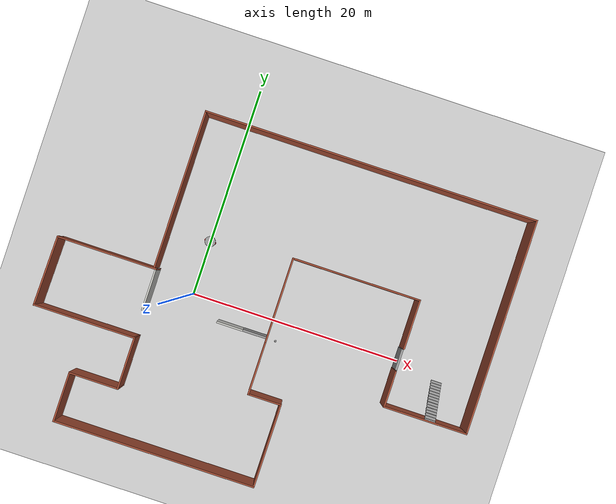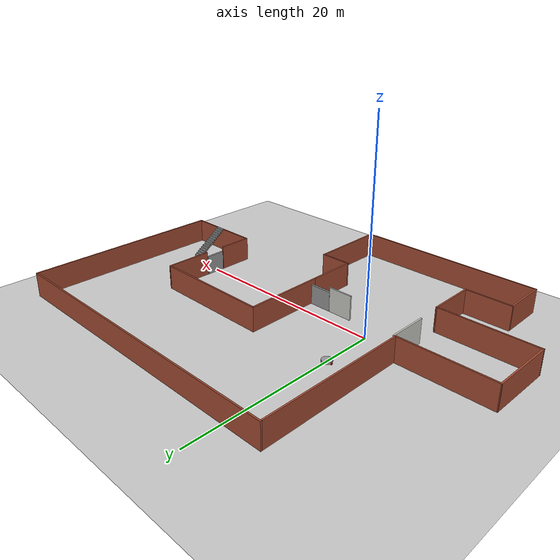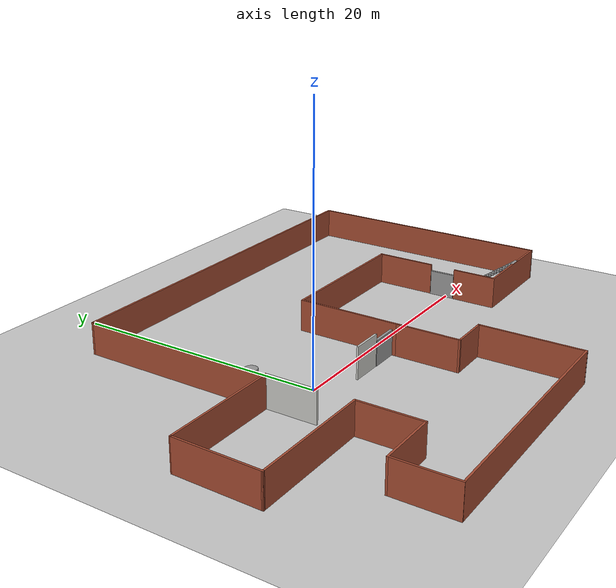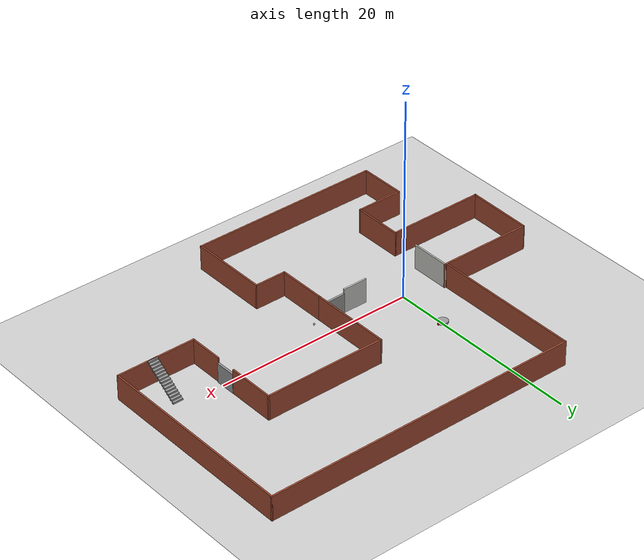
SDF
<sdf version="1.6">
 <world name="default">
  <light name="sun" type="directional">
   <pose>0 0 10 0 -0 0</pose>
   <diffuse>0.8 0.8 0.8 1</diffuse>
   <specular>0.2 0.2 0.2 1</specular>
   <attenuation>
    <range>1000</range>
    <constant>0.9</constant>
    <linear>0.01</linear>
    <quadratic>0.001</quadratic>
   </attenuation>
   <direction>-0.5 0.1 -0.9</direction>
   <spot><inner_angle>0</inner_angle><outer_angle>0</outer_angle><falloff>0</falloff></spot>
  </light>
  <model name="ground_plane">
   <static>1</static>
   <link name="link">
    <collision name="collision">
     <geometry><plane><normal>0 0 1</normal><size>100 100</size></plane></geometry>
     <surface>
      <contact><collide_bitmask>65535</collide_bitmask></contact>
      <friction><ode><mu>100</mu><mu2>50</mu2></ode></friction>
     </surface>
    </collision>
    <visual name="visual">
     <cast_shadows>0</cast_shadows>
     <geometry><plane><normal>0 0 1</normal><size>100 100</size></plane></geometry>
     <material>
      <script><uri>file://media/materials/scripts/gazebo.material</uri><name>Gazebo/Grey</name></script>
     </material>
    </visual>
   </link>
  </model>
  <gravity>0 0 -9.8</gravity>
  <magnetic_field>6e-06 2.3e-05 -4.2e-05</magnetic_field>
  <atmosphere type="adiabatic"/>
  <physics type="ode">
   <max_step_size>0.001</max_step_size>
   <real_time_factor>1</real_time_factor>
   <real_time_update_rate>1000</real_time_update_rate>
  </physics>
  <scene><ambient>0.4 0.4 0.4 1</ambient><background>0.7 0.7 0.7 1</background><shadows>1</shadows></scene>
  <spherical_coordinates>
   <surface_model>EARTH_WGS84</surface_model>
   <latitude_deg>0</latitude_deg>
   <longitude_deg>0</longitude_deg>
   <elevation>0</elevation>
   <heading_deg>0</heading_deg>
  </spherical_coordinates>
  <model name="myworld">
   <pose>7.2478 0.722652 0 0 -0 0</pose>
   <link name="Door_0">
    <collision name="Door_0_Collision">
     <geometry><box><size>1.99414 0.2 2</size></box></geometry>
     <pose>0 0 1 0 -0 0</pose>
    </collision>
    <visual name="Door_0_Visual">
     <pose>0 0 1 0 -0 0</pose>
     <geometry><box><size>1.99414 0.2 2</size></box></geometry>
     <material>
      <script><uri>file://media/materials/scripts/gazebo.material</uri><name>Gazebo/Grey</name></script>
     </material>
    </visual>
    <pose>12.6422 -0.408192 0 0 -0 -1.5619</pose>
   </link>
   <link name="Door_1">
    <collision name="Door_1_Collision">
     <geometry><box><size>2.24486 0.2 2</size></box></geometry>
     <pose>0 0 1 0 -0 0</pose>
    </collision>
    <visual name="Door_1_Visual">
     <pose>0 0 1 0 -0 0</pose>
     <geometry><box><size>2.24486 0.2 2</size></box></geometry>
     <material>
      <script><uri>file://media/materials/scripts/gazebo.material</uri><name>Gazebo/Grey</name></script>
     </material>
    </visual>
    <pose>-0.646656 -2.34103 0 0 -0 0</pose>
   </link>
   <link name="Stairs_0">
    <visual name="Stairs_0_Visual_0">
     <pose>16.9302 -1.50411 0.083333 0 -0 0</pose>
     <geometry><box><size>1 0.233333 0.166667</size></box></geometry>
     <material>
      <script><uri>file://media/materials/scripts/gazebo.material</uri><name>Gazebo/Grey</name></script>
      <ambient>1 1 1 1</ambient>
     </material>
     <meta><layer>0</layer></meta>
    </visual>
    <collision name="Stairs_0_Collision_0">
     <geometry><box><size>1 0.233333 0.166667</size></box></geometry>
     <pose>16.9302 -1.50411 0.083333 0 -0 0</pose>
    </collision>
    <visual name="Stairs_0_Visual_1">
     <pose>16.9302 -1.73745 0.25 0 -0 0</pose>
     <geometry><box><size>1 0.233333 0.166667</size></box></geometry>
     <material>
      <script><uri>file://media/materials/scripts/gazebo.material</uri><name>Gazebo/Grey</name></script>
      <ambient>1 1 1 1</ambient>
     </material>
     <meta><layer>0</layer></meta>
    </visual>
    <collision name="Stairs_0_Collision_1">
     <geometry><box><size>1 0.233333 0.166667</size></box></geometry>
     <pose>16.9302 -1.73745 0.25 0 -0 0</pose>
    </collision>
    <visual name="Stairs_0_Visual_2">
     <pose>16.9302 -1.97078 0.416667 0 -0 0</pose>
     <geometry><box><size>1 0.233333 0.166667</size></box></geometry>
     <material>
      <script><uri>file://media/materials/scripts/gazebo.material</uri><name>Gazebo/Grey</name></script>
      <ambient>1 1 1 1</ambient>
     </material>
     <meta><layer>0</layer></meta>
    </visual>
    <collision name="Stairs_0_Collision_2">
     <geometry><box><size>1 0.233333 0.166667</size></box></geometry>
     <pose>16.9302 -1.97078 0.416667 0 -0 0</pose>
    </collision>
    <visual name="Stairs_0_Visual_3">
     <pose>16.9302 -2.20411 0.583333 0 -0 0</pose>
     <geometry><box><size>1 0.233333 0.166667</size></box></geometry>
     <material>
      <script><uri>file://media/materials/scripts/gazebo.material</uri><name>Gazebo/Grey</name></script>
      <ambient>1 1 1 1</ambient>
     </material>
     <meta><layer>0</layer></meta>
    </visual>
    <collision name="Stairs_0_Collision_3">
     <geometry><box><size>1 0.233333 0.166667</size></box></geometry>
     <pose>16.9302 -2.20411 0.583333 0 -0 0</pose>
    </collision>
    <visual name="Stairs_0_Visual_4">
     <pose>16.9302 -2.43745 0.75 0 -0 0</pose>
     <geometry><box><size>1 0.233333 0.166667</size></box></geometry>
     <material>
      <script><uri>file://media/materials/scripts/gazebo.material</uri><name>Gazebo/Grey</name></script>
      <ambient>1 1 1 1</ambient>
     </material>
     <meta><layer>0</layer></meta>
    </visual>
    <collision name="Stairs_0_Collision_4">
     <geometry><box><size>1 0.233333 0.166667</size></box></geometry>
     <pose>16.9302 -2.43745 0.75 0 -0 0</pose>
    </collision>
    <visual name="Stairs_0_Visual_5">
     <pose>16.9302 -2.67078 0.916667 0 -0 0</pose>
     <geometry><box><size>1 0.233333 0.166667</size></box></geometry>
     <material>
      <script><uri>file://media/materials/scripts/gazebo.material</uri><name>Gazebo/Grey</name></script>
      <ambient>1 1 1 1</ambient>
     </material>
     <meta><layer>0</layer></meta>
    </visual>
    <collision name="Stairs_0_Collision_5">
     <geometry><box><size>1 0.233333 0.166667</size></box></geometry>
     <pose>16.9302 -2.67078 0.916667 0 -0 0</pose>
    </collision>
    <visual name="Stairs_0_Visual_6">
     <pose>16.9302 -2.90411 1.08333 0 -0 0</pose>
     <geometry><box><size>1 0.233333 0.166667</size></box></geometry>
     <material>
      <script><uri>file://media/materials/scripts/gazebo.material</uri><name>Gazebo/Grey</name></script>
      <ambient>1 1 1 1</ambient>
     </material>
     <meta><layer>0</layer></meta>
    </visual>
    <collision name="Stairs_0_Collision_6">
     <geometry><box><size>1 0.233333 0.166667</size></box></geometry>
     <pose>16.9302 -2.90411 1.08333 0 -0 0</pose>
    </collision>
    <visual name="Stairs_0_Visual_7">
     <pose>16.9302 -3.13745 1.25 0 -0 0</pose>
     <geometry><box><size>1 0.233333 0.166667</size></box></geometry>
     <material>
      <script><uri>file://media/materials/scripts/gazebo.material</uri><name>Gazebo/Grey</name></script>
      <ambient>1 1 1 1</ambient>
     </material>
     <meta><layer>0</layer></meta>
    </visual>
    <collision name="Stairs_0_Collision_7">
     <geometry><box><size>1 0.233333 0.166667</size></box></geometry>
     <pose>16.9302 -3.13745 1.25 0 -0 0</pose>
    </collision>
    <visual name="Stairs_0_Visual_8">
     <pose>16.9302 -3.37078 1.41667 0 -0 0</pose>
     <geometry><box><size>1 0.233333 0.166667</size></box></geometry>
     <material>
      <script><uri>file://media/materials/scripts/gazebo.material</uri><name>Gazebo/Grey</name></script>
      <ambient>1 1 1 1</ambient>
     </material>
     <meta><layer>0</layer></meta>
    </visual>
    <collision name="Stairs_0_Collision_8">
     <geometry><box><size>1 0.233333 0.166667</size></box></geometry>
     <pose>16.9302 -3.37078 1.41667 0 -0 0</pose>
    </collision>
    <visual name="Stairs_0_Visual_9">
     <pose>16.9302 -3.60411 1.58333 0 -0 0</pose>
     <geometry><box><size>1 0.233333 0.166667</size></box></geometry>
     <material>
      <script><uri>file://media/materials/scripts/gazebo.material</uri><name>Gazebo/Grey</name></script>
      <ambient>1 1 1 1</ambient>
     </material>
     <meta><layer>0</layer></meta>
    </visual>
    <collision name="Stairs_0_Collision_9">
     <geometry><box><size>1 0.233333 0.166667</size></box></geometry>
     <pose>16.9302 -3.60411 1.58333 0 -0 0</pose>
    </collision>
    <visual name="Stairs_0_Visual_10">
     <pose>16.9302 -3.83745 1.75 0 -0 0</pose>
     <geometry><box><size>1 0.233333 0.166667</size></box></geometry>
     <material>
      <script><uri>file://media/materials/scripts/gazebo.material</uri><name>Gazebo/Grey</name></script>
      <ambient>1 1 1 1</ambient>
     </material>
     <meta><layer>0</layer></meta>
    </visual>
    <collision name="Stairs_0_Collision_10">
     <geometry><box><size>1 0.233333 0.166667</size></box></geometry>
     <pose>16.9302 -3.83745 1.75 0 -0 0</pose>
    </collision>
    <visual name="Stairs_0_Visual_11">
     <pose>16.9302 -4.07078 1.91667 0 -0 0</pose>
     <geometry><box><size>1 0.233333 0.166667</size></box></geometry>
     <material>
      <script><uri>file://media/materials/scripts/gazebo.material</uri><name>Gazebo/Grey</name></script>
      <ambient>1 1 1 1</ambient>
     </material>
     <meta><layer>0</layer></meta>
    </visual>
    <collision name="Stairs_0_Collision_11">
     <geometry><box><size>1 0.233333 0.166667</size></box></geometry>
     <pose>16.9302 -4.07078 1.91667 0 -0 0</pose>
    </collision>
    <visual name="Stairs_0_Visual_12">
     <pose>16.9302 -4.30411 2.08333 0 -0 0</pose>
     <geometry><box><size>1 0.233333 0.166667</size></box></geometry>
     <material>
      <script><uri>file://media/materials/scripts/gazebo.material</uri><name>Gazebo/Grey</name></script>
      <ambient>1 1 1 1</ambient>
     </material>
     <meta><layer>0</layer></meta>
    </visual>
    <collision name="Stairs_0_Collision_12">
     <geometry><box><size>1 0.233333 0.166667</size></box></geometry>
     <pose>16.9302 -4.30411 2.08333 0 -0 0</pose>
    </collision>
    <visual name="Stairs_0_Visual_13">
     <pose>16.9302 -4.53745 2.25 0 -0 0</pose>
     <geometry><box><size>1 0.233333 0.166667</size></box></geometry>
     <material>
      <script><uri>file://media/materials/scripts/gazebo.material</uri><name>Gazebo/Grey</name></script>
      <ambient>1 1 1 1</ambient>
     </material>
     <meta><layer>0</layer></meta>
    </visual>
    <collision name="Stairs_0_Collision_13">
     <geometry><box><size>1 0.233333 0.166667</size></box></geometry>
     <pose>16.9302 -4.53745 2.25 0 -0 0</pose>
    </collision>
    <visual name="Stairs_0_Visual_14">
     <pose>16.9302 -4.77078 2.41667 0 -0 0</pose>
     <geometry><box><size>1 0.233333 0.166667</size></box></geometry>
     <material>
      <script><uri>file://media/materials/scripts/gazebo.material</uri><name>Gazebo/Grey</name></script>
      <ambient>1 1 1 1</ambient>
     </material>
     <meta><layer>0</layer></meta>
    </visual>
    <collision name="Stairs_0_Collision_14">
     <geometry><box><size>1 0.233333 0.166667</size></box></geometry>
     <pose>16.9302 -4.77078 2.41667 0 -0 0</pose>
    </collision>
   </link>
   <link name="Wall_0">
    <collision name="Wall_0_Collision">
     <geometry><box><size>9.75 0.15 2.5</size></box></geometry>
     <pose>0 0 1.25 0 -0 0</pose>
    </collision>
    <visual name="Wall_0_Visual">
     <pose>0 0 1.25 0 -0 0</pose>
     <geometry><box><size>9.75 0.15 2.5</size></box></geometry>
     <material>
      <script><uri>file://media/materials/scripts/gazebo.material</uri><name>Gazebo/Bricks</name></script>
      <ambient>1 1 1 1</ambient>
     </material>
     <meta><layer>0</layer></meta>
    </visual>
    <pose>-15.6478 -6.04265 0 0 -0 0</pose>
   </link>
   <link name="Wall_1">
    <collision name="Wall_1_Collision">
     <geometry><box><size>5 0.15 2.5</size></box></geometry>
     <pose>0 0 1.25 0 -0 0</pose>
    </collision>
    <visual name="Wall_1_Visual">
     <pose>0 0 1.25 0 -0 0</pose>
     <geometry><box><size>5 0.15 2.5</size></box></geometry>
     <material>
      <script><uri>file://media/materials/scripts/gazebo.material</uri><name>Gazebo/Bricks</name></script>
      <ambient>1 1 1 1</ambient>
     </material>
     <meta><layer>0</layer></meta>
    </visual>
    <pose>-10.8478 -8.46765 0 0 -0 -1.5708</pose>
   </link>
   <link name="Wall_10">
    <collision name="Wall_10_Collision">
     <geometry><box><size>4.75 0.15 2.5</size></box></geometry>
     <pose>0 0 1.25 0 -0 0</pose>
    </collision>
    <visual name="Wall_10_Visual">
     <pose>0 0 1.25 0 -0 0</pose>
     <geometry><box><size>4.75 0.15 2.5</size></box></geometry>
     <material>
      <script><uri>file://media/materials/scripts/gazebo.material</uri><name>Gazebo/Bricks</name></script>
      <ambient>1 1 1 1</ambient>
     </material>
     <meta><layer>0</layer></meta>
    </visual>
    <pose>12.6522 3.00735 0 0 -0 -1.5708</pose>
   </link>
   <link name="Wall_12">
    <collision name="Wall_12_Collision">
     <geometry><box><size>2.5 0.15 2.5</size></box></geometry>
     <pose>0 0 1.25 0 -0 0</pose>
    </collision>
    <visual name="Wall_12_Visual">
     <pose>0 0 1.25 0 -0 0</pose>
     <geometry><box><size>2.5 0.15 2.5</size></box></geometry>
     <material>
      <script><uri>file://media/materials/scripts/gazebo.material</uri><name>Gazebo/CeilingTiled</name></script>
      <ambient>0.996078 0.47451 0.0196078 1</ambient>
     </material>
     <meta><layer>0</layer></meta>
    </visual>
    <pose>-2.9952 -2.3273 0 0 -0 0</pose>
   </link>
   <link name="Wall_14">
    <collision name="Wall_14_Collision">
     <geometry><box><size>4 0.15 2.5</size></box></geometry>
     <pose>0 0 1.25 0 -0 0</pose>
    </collision>
    <visual name="Wall_14_Visual">
     <pose>0 0 1.25 0 -0 0</pose>
     <geometry><box><size>4 0.15 2.5</size></box></geometry>
     <material>
      <script><uri>file://media/materials/scripts/gazebo.material</uri><name>Gazebo/CeilingTiled</name></script>
      <ambient>0.996078 0.47451 0.0196078 1</ambient>
     </material>
     <meta><layer>0</layer></meta>
    </visual>
    <pose>-10.9811 -1.43385 0 0 -0 1.5708</pose>
   </link>
   <link name="Wall_15">
    <collision name="Wall_15_Collision">
     <geometry><box><size>9.5 0.15 2.5</size></box></geometry>
     <pose>0 0 1.25 0 -0 0</pose>
    </collision>
    <visual name="Wall_15_Visual">
     <pose>0 0 1.25 0 -0 0</pose>
     <geometry><box><size>9.5 0.15 2.5</size></box></geometry>
     <material>
      <script><uri>file://media/materials/scripts/gazebo.material</uri><name>Gazebo/Bricks</name></script>
      <ambient>1 1 1 1</ambient>
     </material>
     <meta><layer>0</layer></meta>
    </visual>
    <pose>-15.6561 0.491153 0 0 -0 3.14159</pose>
   </link>
   <link name="Wall_16">
    <collision name="Wall_16_Collision">
     <geometry><box><size>6.68485 0.15 2.5</size></box></geometry>
     <pose>0 0 1.25 0 -0 0</pose>
    </collision>
    <visual name="Wall_16_Visual">
     <pose>0 0 1.25 0 -0 0</pose>
     <geometry><box><size>6.68485 0.15 2.5</size></box></geometry>
     <material>
      <script><uri>file://media/materials/scripts/gazebo.material</uri><name>Gazebo/Bricks</name></script>
      <ambient>1 1 1 1</ambient>
     </material>
     <meta><layer>0</layer></meta>
    </visual>
    <pose>-20.3894 -2.77575 0 0 -0 -1.58866</pose>
   </link>
   <link name="Wall_18">
    <collision name="Wall_18_Collision">
     <geometry><box><size>3.5 0.15 2.5</size></box></geometry>
     <pose>0 0 1.25 0 -0 0</pose>
    </collision>
    <visual name="Wall_18_Visual">
     <pose>0 0 1.25 0 -0 0</pose>
     <geometry><box><size>3.5 0.15 2.5</size></box></geometry>
     <material>
      <script><uri>file://media/materials/scripts/gazebo.material</uri><name>Gazebo/Bricks</name></script>
      <ambient>1 1 1 1</ambient>
     </material>
     <meta><layer>0</layer></meta>
    </visual>
    <pose>12.5991 -3.18235 0 0 -0 -1.5708</pose>
   </link>
   <link name="Wall_19">
    <collision name="Wall_19_Collision">
     <geometry><box><size>8 0.15 2.5</size></box></geometry>
     <pose>0 0 1.25 0 -0 0</pose>
    </collision>
    <visual name="Wall_19_Visual">
     <pose>0 0 1.25 0 -0 0</pose>
     <geometry><box><size>8 0.15 2.5</size></box></geometry>
     <material>
      <script><uri>file://media/materials/scripts/gazebo.material</uri><name>Gazebo/Bricks</name></script>
      <ambient>1 1 1 1</ambient>
     </material>
     <meta><layer>0</layer></meta>
    </visual>
    <pose>16.5241 -4.85735 0 0 -0 0</pose>
   </link>
   <link name="Wall_2">
    <collision name="Wall_2_Collision">
     <geometry><box><size>4.75 0.15 2.5</size></box></geometry>
     <pose>0 0 1.25 0 -0 0</pose>
    </collision>
    <visual name="Wall_2_Visual">
     <pose>0 0 1.25 0 -0 0</pose>
     <geometry><box><size>4.75 0.15 2.5</size></box></geometry>
     <material>
      <script><uri>file://media/materials/scripts/gazebo.material</uri><name>Gazebo/Bricks</name></script>
      <ambient>1 1 1 1</ambient>
     </material>
     <meta><layer>0</layer></meta>
    </visual>
    <pose>-13.1478 -10.8927 0 0 -0 3.14159</pose>
   </link>
   <link name="Wall_20">
    <collision name="Wall_20_Collision">
     <geometry><box><size>20.5 0.15 2.5</size></box></geometry>
     <pose>0 0 1.25 0 -0 0</pose>
    </collision>
    <visual name="Wall_20_Visual">
     <pose>0 0 1.25 0 -0 0</pose>
     <geometry><box><size>20.5 0.15 2.5</size></box></geometry>
     <material>
      <script><uri>file://media/materials/scripts/gazebo.material</uri><name>Gazebo/Bricks</name></script>
      <ambient>1 1 1 1</ambient>
     </material>
     <meta><layer>0</layer></meta>
    </visual>
    <pose>20.4491 5.31765 0 0 -0 1.5708</pose>
   </link>
   <link name="Wall_21">
    <collision name="Wall_21_Collision">
     <geometry><box><size>31.75 0.15 2.5</size></box></geometry>
     <pose>0 0 1.25 0 -0 0</pose>
    </collision>
    <visual name="Wall_21_Visual">
     <pose>0 0 1.25 0 -0 0</pose>
     <geometry><box><size>31.75 0.15 2.5</size></box></geometry>
     <material>
      <script><uri>file://media/materials/scripts/gazebo.material</uri><name>Gazebo/Bricks</name></script>
      <ambient>1 1 1 1</ambient>
     </material>
     <meta><layer>0</layer></meta>
    </visual>
    <pose>4.6491 15.4927 0 0 -0 3.14159</pose>
   </link>
   <link name="Wall_22">
    <collision name="Wall_22_Collision">
     <geometry><box><size>15 0.15 2.5</size></box></geometry>
     <pose>0 0 1.25 0 -0 0</pose>
    </collision>
    <visual name="Wall_22_Visual">
     <pose>0 0 1.25 0 -0 0</pose>
     <geometry><box><size>15 0.15 2.5</size></box></geometry>
     <material>
      <script><uri>file://media/materials/scripts/gazebo.material</uri><name>Gazebo/Bricks</name></script>
      <ambient>1 1 1 1</ambient>
     </material>
     <meta><layer>0</layer></meta>
    </visual>
    <pose>-11.1509 8.06765 0 0 -0 -1.5708</pose>
   </link>
   <link name="Wall_3">
    <collision name="Wall_3_Collision">
     <geometry><box><size>4.75 0.15 2.5</size></box></geometry>
     <pose>0 0 1.25 0 -0 0</pose>
    </collision>
    <visual name="Wall_3_Visual">
     <pose>0 0 1.25 0 -0 0</pose>
     <geometry><box><size>4.75 0.15 2.5</size></box></geometry>
     <material>
      <script><uri>file://media/materials/scripts/gazebo.material</uri><name>Gazebo/Bricks</name></script>
      <ambient>1 1 1 1</ambient>
     </material>
     <meta><layer>0</layer></meta>
    </visual>
    <pose>-15.4478 -13.1927 0 0 -0 -1.5708</pose>
   </link>
   <link name="Wall_4">
    <collision name="Wall_4_Collision">
     <geometry><box><size>19.25 0.15 2.5</size></box></geometry>
     <pose>0 0 1.25 0 -0 0</pose>
    </collision>
    <visual name="Wall_4_Visual">
     <pose>0 0 1.25 0 -0 0</pose>
     <geometry><box><size>19.25 0.15 2.5</size></box></geometry>
     <material>
      <script><uri>file://media/materials/scripts/gazebo.material</uri><name>Gazebo/Bricks</name></script>
      <ambient>1 1 1 1</ambient>
     </material>
     <meta><layer>0</layer></meta>
    </visual>
    <pose>-5.89778 -15.4927 0 0 -0 0</pose>
   </link>
   <link name="Wall_5">
    <collision name="Wall_5_Collision">
     <geometry><box><size>8 0.15 2.5</size></box></geometry>
     <pose>0 0 1.25 0 -0 0</pose>
    </collision>
    <visual name="Wall_5_Visual">
     <pose>0 0 1.25 0 -0 0</pose>
     <geometry><box><size>8 0.15 2.5</size></box></geometry>
     <material>
      <script><uri>file://media/materials/scripts/gazebo.material</uri><name>Gazebo/Bricks</name></script>
      <ambient>1 1 1 1</ambient>
     </material>
     <meta><layer>0</layer></meta>
    </visual>
    <pose>3.65223 -11.5677 0 0 -0 1.5708</pose>
   </link>
   <link name="Wall_6">
    <collision name="Wall_6_Collision">
     <geometry><box><size>3.25 0.15 2.5</size></box></geometry>
     <pose>0 0 1.25 0 -0 0</pose>
    </collision>
    <visual name="Wall_6_Visual">
     <pose>0 0 1.25 0 -0 0</pose>
     <geometry><box><size>3.25 0.15 2.5</size></box></geometry>
     <material>
      <script><uri>file://media/materials/scripts/gazebo.material</uri><name>Gazebo/Bricks</name></script>
      <ambient>1 1 1 1</ambient>
     </material>
     <meta><layer>0</layer></meta>
    </visual>
    <pose>2.10222 -7.64265 0 0 -0 3.14159</pose>
   </link>
   <link name="Wall_7">
    <collision name="Wall_7_Collision">
     <geometry><box><size>5 0.15 2.5</size></box></geometry>
     <pose>0 0 1.25 0 -0 0</pose>
    </collision>
    <visual name="Wall_7_Visual">
     <pose>0 0 1.25 0 -0 0</pose>
     <geometry><box><size>5 0.15 2.5</size></box></geometry>
     <material>
      <script><uri>file://media/materials/scripts/gazebo.material</uri><name>Gazebo/Bricks</name></script>
      <ambient>1 1 1 1</ambient>
     </material>
     <meta><layer>0</layer></meta>
    </visual>
    <pose>0.552225 -5.21765 0 0 -0 1.5708</pose>
   </link>
   <link name="Wall_8">
    <collision name="Wall_8_Collision">
     <geometry><box><size>8.25 0.15 2.5</size></box></geometry>
     <pose>0 0 1.25 0 -0 0</pose>
    </collision>
    <visual name="Wall_8_Visual">
     <pose>0 0 1.25 0 -0 0</pose>
     <geometry><box><size>8.25 0.15 2.5</size></box></geometry>
     <material>
      <script><uri>file://media/materials/scripts/gazebo.material</uri><name>Gazebo/Bricks</name></script>
      <ambient>1 1 1 1</ambient>
     </material>
     <meta><layer>0</layer></meta>
    </visual>
    <pose>0.552225 1.25735 0 0 -0 1.5708</pose>
   </link>
   <link name="Wall_9">
    <collision name="Wall_9_Collision">
     <geometry><box><size>12.25 0.15 2.5</size></box></geometry>
     <pose>0 0 1.25 0 -0 0</pose>
    </collision>
    <visual name="Wall_9_Visual">
     <pose>0 0 1.25 0 -0 0</pose>
     <geometry><box><size>12.25 0.15 2.5</size></box></geometry>
     <material>
      <script><uri>file://media/materials/scripts/gazebo.material</uri><name>Gazebo/Bricks</name></script>
      <ambient>1 1 1 1</ambient>
     </material>
     <meta><layer>0</layer></meta>
    </visual>
    <pose>6.60222 5.30735 0 0 -0 0</pose>
   </link>
   <static>1</static>
  </model>
  <model name="robot__clone">
   <model name="model">
    <link name="link_0">
     <inertial>
      <mass>1</mass>
      <inertia><ixx>0.145833</ixx><ixy>0</ixy><ixz>0</ixz><iyy>0.145833</iyy><iyz>0</iyz><izz>0.125</izz></inertia>
     </inertial>
     <pose>0 0.02 0.08 0 -0 0</pose>
     <visual name="visual">
      <geometry><cylinder><radius>0.5</radius><length>0.2</length></cylinder></geometry>
      <material>
       <lighting>1</lighting>
       <script><uri>file://media/materials/scripts/gazebo.material</uri><name>Gazebo/Grey</name></script>
       <shader type="pixel"><normal_map>__default__</normal_map></shader>
       <ambient>0 0 0 1</ambient>
       <diffuse>0.7 0.7 0.7 1</diffuse>
       <specular>0.01 0.01 0.01 1</specular>
       <emissive>0 0 0 1</emissive>
      </material>
     </visual>
     <collision name="collision">
      <geometry><cylinder><radius>0.5</radius><length>0.2</length></cylinder></geometry>
      <surface>
       <friction>
        <ode><mu>1</mu><mu2>1</mu2><fdir1>0 0 0</fdir1><slip1>0</slip1><slip2>0</slip2></ode>
        <torsional>
         <coefficient>1</coefficient>
         <patch_radius>0</patch_radius>
         <surface_radius>0</surface_radius>
         <use_patch_radius>1</use_patch_radius>
         <ode><slip>0</slip></ode>
        </torsional>
       </friction>
       <bounce><restitution_coefficient>0</restitution_coefficient><threshold>1e+06</threshold></bounce>
       <contact>
        <collide_without_contact>0</collide_without_contact>
        <collide_without_contact_bitmask>1</collide_without_contact_bitmask>
        <collide_bitmask>1</collide_bitmask>
        <ode>
         <soft_cfm>0</soft_cfm>
         <soft_erp>0.2</soft_erp>
         <kp>1e+13</kp>
         <kd>1</kd>
         <max_vel>0.01</max_vel>
         <min_depth>0</min_depth>
        </ode>
        <bullet>
         <split_impulse>1</split_impulse>
         <split_impulse_penetration_threshold>-0.01</split_impulse_penetration_threshold>
         <soft_cfm>0</soft_cfm>
         <soft_erp>0.2</soft_erp>
         <kp>1e+13</kp>
         <kd>1</kd>
        </bullet>
       </contact>
      </surface>
     </collision>
    </link>
    <link name="link_1">
     <inertial>
      <mass>1</mass>
      <inertia><ixx>0.145833</ixx><ixy>0</ixy><ixz>0</ixz><iyy>0.145833</iyy><iyz>0</iyz><izz>0.125</izz></inertia>
     </inertial>
     <pose>0.52501 0.02 -0.02 0 1.5707 0</pose>
     <visual name="visual">
      <geometry><cylinder><radius>0.1</radius><length>0.05</length></cylinder></geometry>
      <material>
       <lighting>1</lighting>
       <script><uri>file://media/materials/scripts/gazebo.material</uri><name>Gazebo/Grey</name></script>
       <shader type="pixel"><normal_map>__default__</normal_map></shader>
       <ambient>1 0 0 0</ambient>
       <diffuse>0.7 0.7 0.7 1</diffuse>
       <specular>0.01 0.01 0.01 1</specular>
       <emissive>0 0 0 1</emissive>
      </material>
     </visual>
     <collision name="collision">
      <geometry><cylinder><radius>0.1</radius><length>0.05</length></cylinder></geometry>
      <surface>
       <friction>
        <ode><mu>1</mu><mu2>1</mu2><fdir1>0 0 0</fdir1><slip1>0</slip1><slip2>0</slip2></ode>
        <torsional>
         <coefficient>1</coefficient>
         <patch_radius>0</patch_radius>
         <surface_radius>0</surface_radius>
         <use_patch_radius>1</use_patch_radius>
         <ode><slip>0</slip></ode>
        </torsional>
       </friction>
       <bounce><restitution_coefficient>0</restitution_coefficient><threshold>1e+06</threshold></bounce>
       <contact>
        <collide_without_contact>0</collide_without_contact>
        <collide_without_contact_bitmask>1</collide_without_contact_bitmask>
        <collide_bitmask>1</collide_bitmask>
        <ode>
         <soft_cfm>0</soft_cfm>
         <soft_erp>0.2</soft_erp>
         <kp>1e+13</kp>
         <kd>1</kd>
         <max_vel>0.01</max_vel>
         <min_depth>0</min_depth>
        </ode>
        <bullet>
         <split_impulse>1</split_impulse>
         <split_impulse_penetration_threshold>-0.01</split_impulse_penetration_threshold>
         <soft_cfm>0</soft_cfm>
         <soft_erp>0.2</soft_erp>
         <kp>1e+13</kp>
         <kd>1</kd>
        </bullet>
       </contact>
      </surface>
     </collision>
    </link>
    <link name="link_1_clone">
     <inertial>
      <mass>1</mass>
      <inertia><ixx>0.145833</ixx><ixy>0</ixy><ixz>0</ixz><iyy>0.145833</iyy><iyz>0</iyz><izz>0.125</izz></inertia>
     </inertial>
     <pose>-0.52501 0.02 -0.02 0 1.5707 0</pose>
     <visual name="visual">
      <geometry><cylinder><radius>0.1</radius><length>0.05</length></cylinder></geometry>
      <material>
       <lighting>1</lighting>
       <script><uri>file://media/materials/scripts/gazebo.material</uri><name>Gazebo/Grey</name></script>
       <shader type="pixel"><normal_map>__default__</normal_map></shader>
       <ambient>1 0 0 0</ambient>
       <diffuse>0.7 0.7 0.7 1</diffuse>
       <specular>0.01 0.01 0.01 1</specular>
       <emissive>0 0 0 1</emissive>
      </material>
     </visual>
     <collision name="collision">
      <geometry><cylinder><radius>0.1</radius><length>0.05</length></cylinder></geometry>
      <surface>
       <friction>
        <ode><mu>1</mu><mu2>1</mu2><fdir1>0 0 0</fdir1><slip1>0</slip1><slip2>0</slip2></ode>
        <torsional>
         <coefficient>1</coefficient>
         <patch_radius>0</patch_radius>
         <surface_radius>0</surface_radius>
         <use_patch_radius>1</use_patch_radius>
         <ode><slip>0</slip></ode>
        </torsional>
       </friction>
       <bounce><restitution_coefficient>0</restitution_coefficient><threshold>1e+06</threshold></bounce>
       <contact>
        <collide_without_contact>0</collide_without_contact>
        <collide_without_contact_bitmask>1</collide_without_contact_bitmask>
        <collide_bitmask>1</collide_bitmask>
        <ode>
         <soft_cfm>0</soft_cfm>
         <soft_erp>0.2</soft_erp>
         <kp>1e+13</kp>
         <kd>1</kd>
         <max_vel>0.01</max_vel>
         <min_depth>0</min_depth>
        </ode>
        <bullet>
         <split_impulse>1</split_impulse>
         <split_impulse_penetration_threshold>-0.01</split_impulse_penetration_threshold>
         <soft_cfm>0</soft_cfm>
         <soft_erp>0.2</soft_erp>
         <kp>1e+13</kp>
         <kd>1</kd>
        </bullet>
       </contact>
      </surface>
     </collision>
    </link>
    <link name="link_2">
     <inertial>
      <mass>1</mass>
      <inertia><ixx>0.1</ixx><ixy>0</ixy><ixz>0</ixz><iyy>0.1</iyy><iyz>0</iyz><izz>0.1</izz></inertia>
     </inertial>
     <pose>0 0.32 -0.02 0 -0 0</pose>
     <visual name="visual">
      <geometry><sphere><radius>0.1</radius></sphere></geometry>
      <material>
       <lighting>1</lighting>
       <script><uri>file://media/materials/scripts/gazebo.material</uri><name>Gazebo/Grey</name></script>
       <shader type="pixel"><normal_map>__default__</normal_map></shader>
       <ambient>1 1 1 1</ambient>
       <diffuse>0.7 0.7 0.7 1</diffuse>
       <specular>0.01 0.01 0.01 1</specular>
       <emissive>0 0 0 1</emissive>
      </material>
     </visual>
     <collision name="collision">
      <geometry><sphere><radius>0.1</radius></sphere></geometry>
      <surface>
       <friction>
        <ode><mu>1</mu><mu2>1</mu2><fdir1>0 0 0</fdir1><slip1>0</slip1><slip2>0</slip2></ode>
        <torsional>
         <coefficient>1</coefficient>
         <patch_radius>0</patch_radius>
         <surface_radius>0</surface_radius>
         <use_patch_radius>1</use_patch_radius>
         <ode><slip>0</slip></ode>
        </torsional>
       </friction>
       <bounce><restitution_coefficient>0</restitution_coefficient><threshold>1e+06</threshold></bounce>
       <contact>
        <collide_without_contact>0</collide_without_contact>
        <collide_without_contact_bitmask>1</collide_without_contact_bitmask>
        <collide_bitmask>1</collide_bitmask>
        <ode>
         <soft_cfm>0</soft_cfm>
         <soft_erp>0.2</soft_erp>
         <kp>1e+13</kp>
         <kd>1</kd>
         <max_vel>0.01</max_vel>
         <min_depth>0</min_depth>
        </ode>
        <bullet>
         <split_impulse>1</split_impulse>
         <split_impulse_penetration_threshold>-0.01</split_impulse_penetration_threshold>
         <soft_cfm>0</soft_cfm>
         <soft_erp>0.2</soft_erp>
         <kp>1e+13</kp>
         <kd>1</kd>
        </bullet>
       </contact>
      </surface>
     </collision>
    </link>
    <link name="link_2_clone">
     <inertial>
      <mass>1</mass>
      <inertia><ixx>0.1</ixx><ixy>0</ixy><ixz>0</ixz><iyy>0.1</iyy><iyz>0</iyz><izz>0.1</izz></inertia>
     </inertial>
     <pose>0 -0.38 -0.02 0 -0 0</pose>
     <visual name="visual">
      <geometry><sphere><radius>0.1</radius></sphere></geometry>
      <material>
       <lighting>1</lighting>
       <script><uri>file://media/materials/scripts/gazebo.material</uri><name>Gazebo/Grey</name></script>
       <shader type="pixel"><normal_map>__default__</normal_map></shader>
       <ambient>1 1 1 1</ambient>
       <diffuse>0.7 0.7 0.7 1</diffuse>
       <specular>0.01 0.01 0.01 1</specular>
       <emissive>0 0 0 1</emissive>
      </material>
     </visual>
     <collision name="collision">
      <geometry><sphere><radius>0.1</radius></sphere></geometry>
      <surface>
       <friction>
        <ode><mu>1</mu><mu2>1</mu2><fdir1>0 0 0</fdir1><slip1>0</slip1><slip2>0</slip2></ode>
        <torsional>
         <coefficient>1</coefficient>
         <patch_radius>0</patch_radius>
         <surface_radius>0</surface_radius>
         <use_patch_radius>1</use_patch_radius>
         <ode><slip>0</slip></ode>
        </torsional>
       </friction>
       <bounce><restitution_coefficient>0</restitution_coefficient><threshold>1e+06</threshold></bounce>
       <contact>
        <collide_without_contact>0</collide_without_contact>
        <collide_without_contact_bitmask>1</collide_without_contact_bitmask>
        <collide_bitmask>1</collide_bitmask>
        <ode>
         <soft_cfm>0</soft_cfm>
         <soft_erp>0.2</soft_erp>
         <kp>1e+13</kp>
         <kd>1</kd>
         <max_vel>0.01</max_vel>
         <min_depth>0</min_depth>
        </ode>
        <bullet>
         <split_impulse>1</split_impulse>
         <split_impulse_penetration_threshold>-0.01</split_impulse_penetration_threshold>
         <soft_cfm>0</soft_cfm>
         <soft_erp>0.2</soft_erp>
         <kp>1e+13</kp>
         <kd>1</kd>
        </bullet>
       </contact>
      </surface>
     </collision>
    </link>
    <joint name="link_0_JOINT_0" type="revolute">
     <parent>link_0</parent>
     <child>link_1</child>
     <axis>
      <xyz>0 0 1</xyz>
      <limit>
       <lower>-1.79769e+308</lower>
       <upper>1.79769e+308</upper>
       <effort>-1</effort>
       <velocity>-1</velocity>
      </limit>
      <dynamics>
       <spring_reference>0</spring_reference>
       <spring_stiffness>0</spring_stiffness>
       <damping>0</damping>
      </dynamics>
     </axis>
     <physics>
      <ode><limit><cfm>0</cfm><erp>0.2</erp></limit><suspension><cfm>0</cfm><erp>0.2</erp></suspension></ode>
     </physics>
    </joint>
    <joint name="link_0_JOINT_1" type="revolute">
     <parent>link_0</parent>
     <child>link_1_clone</child>
     <axis>
      <xyz>0 0 1</xyz>
      <limit>
       <lower>-1.79769e+308</lower>
       <upper>1.79769e+308</upper>
       <effort>-1</effort>
       <velocity>-1</velocity>
      </limit>
      <dynamics>
       <spring_reference>0</spring_reference>
       <spring_stiffness>0</spring_stiffness>
       <damping>0</damping>
      </dynamics>
     </axis>
     <physics>
      <ode><limit><cfm>0</cfm><erp>0.2</erp></limit><suspension><cfm>0</cfm><erp>0.2</erp></suspension></ode>
     </physics>
    </joint>
    <joint name="link_0_JOINT_2" type="ball">
     <parent>link_0</parent>
     <child>link_2</child>
     <physics>
      <ode><limit><cfm>0</cfm><erp>0.2</erp></limit><suspension><cfm>0</cfm><erp>0.2</erp></suspension></ode>
     </physics>
    </joint>
    <joint name="link_0_JOINT_3" type="revolute">
     <parent>link_0</parent>
     <child>link_2_clone</child>
     <axis>
      <xyz>1 0 0</xyz>
      <limit>
       <lower>-1.79769e+308</lower>
       <upper>1.79769e+308</upper>
       <effort>-1</effort>
       <velocity>-1</velocity>
      </limit>
      <dynamics>
       <spring_reference>0</spring_reference>
       <spring_stiffness>0</spring_stiffness>
       <damping>0</damping>
      </dynamics>
     </axis>
     <physics>
      <ode><limit><cfm>0</cfm><erp>0.2</erp></limit><suspension><cfm>0</cfm><erp>0.2</erp></suspension></ode>
     </physics>
    </joint>
    <static>0</static>
   </model>
   <static>0</static>
   <pose>-0.058304 5.09967 0.120002 6e-06 -0 -0.028822</pose>
  </model>
  <model name="my_ball">
   <link name="link_0">
    <inertial>
     <mass>1</mass>
     <inertia><ixx>0.1</ixx><ixy>0</ixy><ixz>0</ixz><iyy>0.1</iyy><iyz>0</iyz><izz>0.1</izz></inertia>
    </inertial>
    <visual name="visual">
     <geometry><sphere><radius>0.1</radius></sphere></geometry>
     <material>
      <lighting>1</lighting>
      <script><uri>file://media/materials/scripts/gazebo.material</uri><name>Gazebo/Grey</name></script>
      <shader type="pixel"><normal_map>__default__</normal_map></shader>
      <ambient>1 1 1 1</ambient>
      <diffuse>1 1 1 1</diffuse>
      <specular>1 1 1 1</specular>
      <emissive>1 1 1 1</emissive>
     </material>
    </visual>
    <collision name="collision">
     <geometry><sphere><radius>0.1</radius></sphere></geometry>
     <surface>
      <friction>
       <ode><mu>1</mu><mu2>1</mu2><fdir1>0 0 0</fdir1><slip1>0</slip1><slip2>0</slip2></ode>
       <torsional>
        <coefficient>1</coefficient>
        <patch_radius>0</patch_radius>
        <surface_radius>0</surface_radius>
        <use_patch_radius>1</use_patch_radius>
        <ode><slip>0</slip></ode>
       </torsional>
      </friction>
      <bounce><restitution_coefficient>0</restitution_coefficient><threshold>1e+06</threshold></bounce>
      <contact>
       <collide_without_contact>0</collide_without_contact>
       <collide_without_contact_bitmask>1</collide_without_contact_bitmask>
       <collide_bitmask>1</collide_bitmask>
       <ode>
        <soft_cfm>0</soft_cfm>
        <soft_erp>0.2</soft_erp>
        <kp>1e+13</kp>
        <kd>1</kd>
        <max_vel>0.01</max_vel>
        <min_depth>0</min_depth>
       </ode>
       <bullet>
        <split_impulse>1</split_impulse>
        <split_impulse_penetration_threshold>-0.01</split_impulse_penetration_threshold>
        <soft_cfm>0</soft_cfm>
        <soft_erp>0.2</soft_erp>
        <kp>1e+13</kp>
        <kd>1</kd>
       </bullet>
      </contact>
     </surface>
    </collision>
   </link>
   <static>0</static>
   <pose>8.65689 -1.81653 0.1 0 -0 0</pose>
  </model>
 </world>
</sdf>
